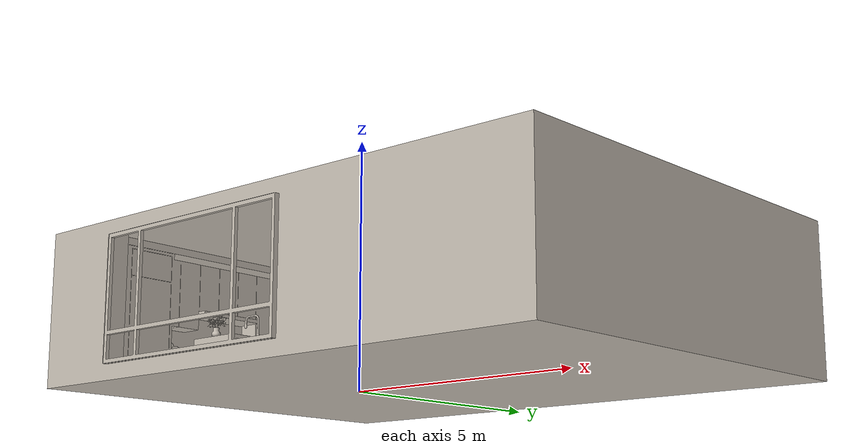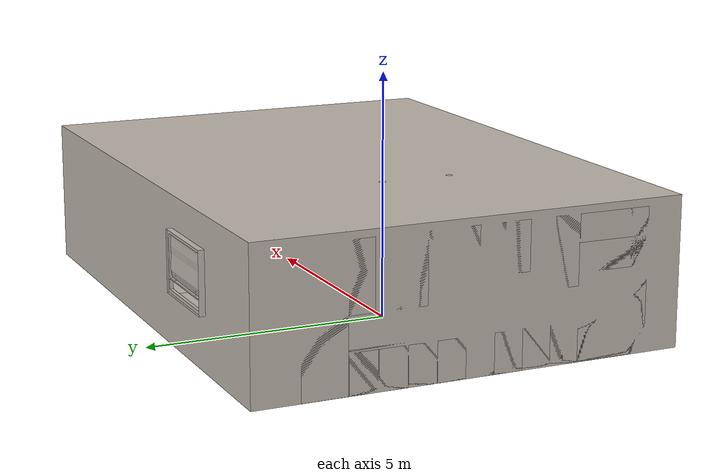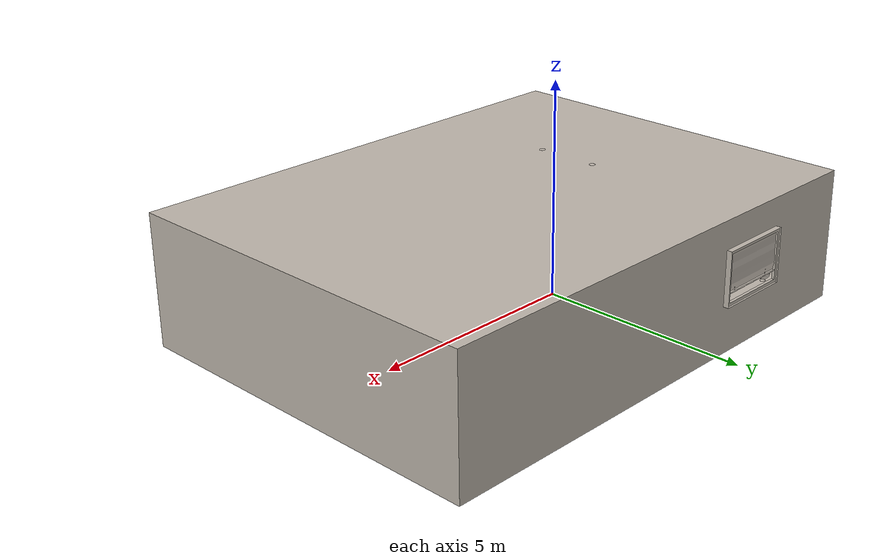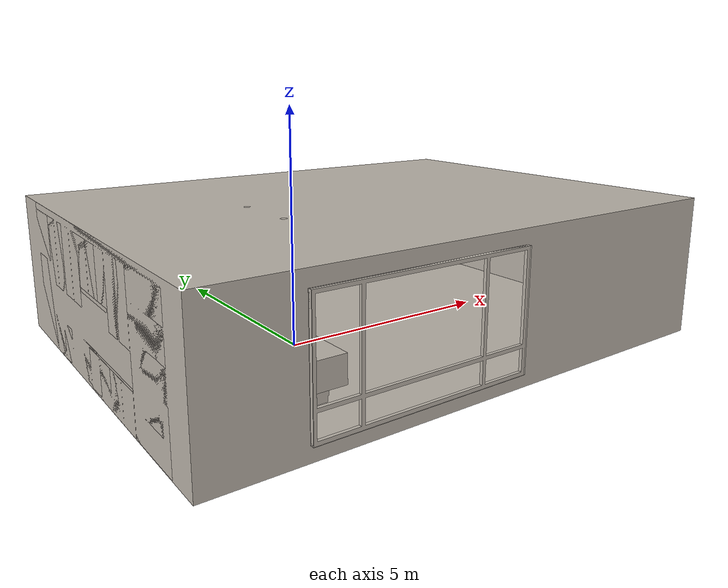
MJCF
<mujoco model="modern_scandinavian_kitchen_island">
  <compiler angle="radian" eulerseq="xyz"/>
  <default>
    <default class="visual">
      <geom group="2" type="mesh" contype="0" conaffinity="0"/>
    </default>
    <default class="collision">
      <geom group="3" type="mesh"/>
    </default>
  </default>
  <asset>
    <texture type="2d" name="material_0" file="material_0.png"/>
    <material name="material_0" texture="material_0" specular="0.4000000000000001" shininess="0.001"/>
    <texture type="2d" name="material_1" file="material_1.png"/>
    <material name="material_1" texture="material_1" specular="0.4000000000000001" shininess="0.001"/>
    <texture type="2d" name="material_2" file="material_2.png"/>
    <material name="material_2" texture="material_2" specular="0.4000000000000001" shininess="0.001"/>
    <texture type="2d" name="material_3" file="material_3.png"/>
    <material name="material_3" texture="material_3" specular="0.4000000000000001" shininess="0.001"/>
    <texture type="2d" name="material_4" file="material_4.png"/>
    <material name="material_4" texture="material_4" specular="0.4000000000000001" shininess="0.001"/>
    <texture type="2d" name="material_5" file="material_5.png"/>
    <material name="material_5" texture="material_5" specular="0.4000000000000001" shininess="0.001"/>
    <texture type="2d" name="material_6" file="material_6.png"/>
    <material name="material_6" texture="material_6" specular="0.4000000000000001" shininess="0.001"/>
    <texture type="2d" name="material_7" file="material_7.png"/>
    <material name="material_7" texture="material_7" specular="0.4000000000000001" shininess="0.001"/>
    <texture type="2d" name="material_8" file="material_8.png"/>
    <material name="material_8" texture="material_8" specular="0.4000000000000001" shininess="0.001"/>
    <texture type="2d" name="material_9" file="material_9.png"/>
    <material name="material_9" texture="material_9" specular="0.4000000000000001" shininess="0.001"/>
    <texture type="2d" name="material_10" file="material_10.png"/>
    <material name="material_10" texture="material_10" specular="0.4000000000000001" shininess="0.001"/>
    <texture type="2d" name="material_11" file="material_11.png"/>
    <material name="material_11" texture="material_11" specular="0.4000000000000001" shininess="0.001"/>
    <texture type="2d" name="material_12" file="material_12.png"/>
    <material name="material_12" texture="material_12" specular="0.4000000000000001" shininess="0.001"/>
    <texture type="2d" name="material_13" file="material_13.png"/>
    <material name="material_13" texture="material_13" specular="0.4000000000000001" shininess="0.001"/>
    <texture type="2d" name="material_14" file="material_14.png"/>
    <material name="material_14" texture="material_14" specular="0.4000000000000001" shininess="0.001"/>
    <texture type="2d" name="material_15" file="material_15.png"/>
    <material name="material_15" texture="material_15" specular="0.4000000000000001" shininess="0.001"/>
    <texture type="2d" name="material_16" file="material_16.png"/>
    <material name="material_16" texture="material_16" specular="0.4000000000000001" shininess="0.001"/>
    <texture type="2d" name="material_17" file="material_17.png"/>
    <material name="material_17" texture="material_17" specular="0.4000000000000001" shininess="0.001"/>
    <texture type="2d" name="material_18" file="material_18.png"/>
    <material name="material_18" texture="material_18" specular="0.4000000000000001" shininess="0.001"/>
    <texture type="2d" name="material_19" file="material_19.png"/>
    <material name="material_19" texture="material_19" specular="0.4000000000000001" shininess="0.001"/>
    <mesh file="modern_scandinavian_kitchen_island_0.obj"/>
    <mesh file="modern_scandinavian_kitchen_island_1.obj"/>
    <mesh file="modern_scandinavian_kitchen_island_2.obj"/>
    <mesh file="modern_scandinavian_kitchen_island_3.obj"/>
    <mesh file="modern_scandinavian_kitchen_island_4.obj"/>
    <mesh file="modern_scandinavian_kitchen_island_5.obj"/>
    <mesh file="modern_scandinavian_kitchen_island_6.obj"/>
    <mesh file="modern_scandinavian_kitchen_island_7.obj"/>
    <mesh file="modern_scandinavian_kitchen_island_8.obj"/>
    <mesh file="modern_scandinavian_kitchen_island_9.obj"/>
    <mesh file="modern_scandinavian_kitchen_island_10.obj"/>
    <mesh file="modern_scandinavian_kitchen_island_11.obj"/>
    <mesh file="modern_scandinavian_kitchen_island_12.obj"/>
    <mesh file="modern_scandinavian_kitchen_island_13.obj"/>
    <mesh file="modern_scandinavian_kitchen_island_14.obj"/>
    <mesh file="modern_scandinavian_kitchen_island_15.obj"/>
    <mesh file="modern_scandinavian_kitchen_island_16.obj"/>
    <mesh file="modern_scandinavian_kitchen_island_17.obj"/>
    <mesh file="modern_scandinavian_kitchen_island_18.obj"/>
    <mesh file="modern_scandinavian_kitchen_island_19.obj"/>
    <mesh file="modern_scandinavian_kitchen_island_collision_0.obj"/>
    <mesh file="modern_scandinavian_kitchen_island_collision_1.obj"/>
    <mesh file="modern_scandinavian_kitchen_island_collision_2.obj"/>
    <mesh file="modern_scandinavian_kitchen_island_collision_3.obj"/>
    <mesh file="modern_scandinavian_kitchen_island_collision_4.obj"/>
    <mesh file="modern_scandinavian_kitchen_island_collision_5.obj"/>
    <mesh file="modern_scandinavian_kitchen_island_collision_6.obj"/>
    <mesh file="modern_scandinavian_kitchen_island_collision_7.obj"/>
    <mesh file="modern_scandinavian_kitchen_island_collision_8.obj"/>
    <mesh file="modern_scandinavian_kitchen_island_collision_9.obj"/>
    <mesh file="modern_scandinavian_kitchen_island_collision_10.obj"/>
    <mesh file="modern_scandinavian_kitchen_island_collision_11.obj"/>
    <mesh file="modern_scandinavian_kitchen_island_collision_12.obj"/>
    <mesh file="modern_scandinavian_kitchen_island_collision_13.obj"/>
    <mesh file="modern_scandinavian_kitchen_island_collision_14.obj"/>
    <mesh file="modern_scandinavian_kitchen_island_collision_15.obj"/>
    <mesh file="modern_scandinavian_kitchen_island_collision_16.obj"/>
    <mesh file="modern_scandinavian_kitchen_island_collision_17.obj"/>
    <mesh file="modern_scandinavian_kitchen_island_collision_18.obj"/>
    <mesh file="modern_scandinavian_kitchen_island_collision_19.obj"/>
    <mesh file="modern_scandinavian_kitchen_island_collision_20.obj"/>
    <mesh file="modern_scandinavian_kitchen_island_collision_21.obj"/>
    <mesh file="modern_scandinavian_kitchen_island_collision_22.obj"/>
    <mesh file="modern_scandinavian_kitchen_island_collision_23.obj"/>
    <mesh file="modern_scandinavian_kitchen_island_collision_24.obj"/>
    <mesh file="modern_scandinavian_kitchen_island_collision_25.obj"/>
    <mesh file="modern_scandinavian_kitchen_island_collision_26.obj"/>
    <mesh file="modern_scandinavian_kitchen_island_collision_27.obj"/>
    <mesh file="modern_scandinavian_kitchen_island_collision_28.obj"/>
    <mesh file="modern_scandinavian_kitchen_island_collision_29.obj"/>
    <mesh file="modern_scandinavian_kitchen_island_collision_30.obj"/>
    <mesh file="modern_scandinavian_kitchen_island_collision_31.obj"/>
    <mesh file="modern_scandinavian_kitchen_island_collision_32.obj"/>
    <mesh file="modern_scandinavian_kitchen_island_collision_33.obj"/>
    <mesh file="modern_scandinavian_kitchen_island_collision_34.obj"/>
    <mesh file="modern_scandinavian_kitchen_island_collision_35.obj"/>
    <mesh file="modern_scandinavian_kitchen_island_collision_36.obj"/>
    <mesh file="modern_scandinavian_kitchen_island_collision_37.obj"/>
    <mesh file="modern_scandinavian_kitchen_island_collision_38.obj"/>
    <mesh file="modern_scandinavian_kitchen_island_collision_39.obj"/>
    <mesh file="modern_scandinavian_kitchen_island_collision_40.obj"/>
    <mesh file="modern_scandinavian_kitchen_island_collision_41.obj"/>
    <mesh file="modern_scandinavian_kitchen_island_collision_42.obj"/>
    <mesh file="modern_scandinavian_kitchen_island_collision_43.obj"/>
    <mesh file="modern_scandinavian_kitchen_island_collision_44.obj"/>
    <mesh file="modern_scandinavian_kitchen_island_collision_45.obj"/>
    <mesh file="modern_scandinavian_kitchen_island_collision_46.obj"/>
    <mesh file="modern_scandinavian_kitchen_island_collision_47.obj"/>
    <mesh file="modern_scandinavian_kitchen_island_collision_48.obj"/>
  </asset>
  <worldbody>
    <body name="modern_scandinavian_kitchen_island" euler="1.57 0 0">
      <geom mesh="modern_scandinavian_kitchen_island_0" material="material_19" class="visual"/>
      <geom mesh="modern_scandinavian_kitchen_island_1" material="material_18" class="visual"/>
      <geom mesh="modern_scandinavian_kitchen_island_2" material="material_17" class="visual"/>
      <geom mesh="modern_scandinavian_kitchen_island_3" material="material_16" class="visual"/>
      <geom mesh="modern_scandinavian_kitchen_island_4" material="material_15" class="visual"/>
      <geom mesh="modern_scandinavian_kitchen_island_5" material="material_14" class="visual"/>
      <geom mesh="modern_scandinavian_kitchen_island_6" material="material_13" class="visual"/>
      <geom mesh="modern_scandinavian_kitchen_island_7" material="material_12" class="visual"/>
      <geom mesh="modern_scandinavian_kitchen_island_8" material="material_11" class="visual"/>
      <geom mesh="modern_scandinavian_kitchen_island_9" material="material_10" class="visual"/>
      <geom mesh="modern_scandinavian_kitchen_island_10" material="material_9" class="visual"/>
      <geom mesh="modern_scandinavian_kitchen_island_11" material="material_8" class="visual"/>
      <geom mesh="modern_scandinavian_kitchen_island_12" material="material_7" class="visual"/>
      <geom mesh="modern_scandinavian_kitchen_island_13" material="material_6" class="visual"/>
      <geom mesh="modern_scandinavian_kitchen_island_14" material="material_5" class="visual"/>
      <geom mesh="modern_scandinavian_kitchen_island_15" material="material_4" class="visual"/>
      <geom mesh="modern_scandinavian_kitchen_island_16" material="material_3" class="visual"/>
      <geom mesh="modern_scandinavian_kitchen_island_17" material="material_2" class="visual"/>
      <geom mesh="modern_scandinavian_kitchen_island_18" material="material_1" class="visual"/>
      <geom mesh="modern_scandinavian_kitchen_island_19" material="material_0" class="visual"/>
      <geom mesh="modern_scandinavian_kitchen_island_collision_0" rgba="0.02049547743511604 0.9821416259018619 0.7870260099940235 1" class="collision"/>
      <geom mesh="modern_scandinavian_kitchen_island_collision_1" rgba="0.3739912202806074 0.28257311729319 0.9488038417607944 1" class="collision"/>
      <geom mesh="modern_scandinavian_kitchen_island_collision_2" rgba="0.8129871604492358 0.7527648124763313 0.9780496678595482 1" class="collision"/>
      <geom mesh="modern_scandinavian_kitchen_island_collision_3" rgba="0.27261057243227993 0.6485446332707373 0.9464054900561335 1" class="collision"/>
      <geom mesh="modern_scandinavian_kitchen_island_collision_4" rgba="0.09129206749429042 0.16561794131598495 0.7850740797340039 1" class="collision"/>
      <geom mesh="modern_scandinavian_kitchen_island_collision_5" rgba="0.6796309702291591 0.3259805983605344 0.9209337270858526 1" class="collision"/>
      <geom mesh="modern_scandinavian_kitchen_island_collision_6" rgba="0.7972625019789883 0.5435647456631177 0.06822350082358142 1" class="collision"/>
      <geom mesh="modern_scandinavian_kitchen_island_collision_7" rgba="0.26904574324093344 0.3522435238572774 0.7867455717541587 1" class="collision"/>
      <geom mesh="modern_scandinavian_kitchen_island_collision_8" rgba="0.9787163609141206 0.6018164005125565 0.8250012142158989 1" class="collision"/>
      <geom mesh="modern_scandinavian_kitchen_island_collision_9" rgba="0.800067763719658 0.9832861452391188 0.9857535422359364 1" class="collision"/>
      <geom mesh="modern_scandinavian_kitchen_island_collision_10" rgba="0.16302809855285483 0.25346788381684415 0.1238273029667829 1" class="collision"/>
      <geom mesh="modern_scandinavian_kitchen_island_collision_11" rgba="0.25841578914548957 0.6594963787528285 0.12583904578142446 1" class="collision"/>
      <geom mesh="modern_scandinavian_kitchen_island_collision_12" rgba="0.5084496104612874 0.8910443145072426 0.43984905046747247 1" class="collision"/>
      <geom mesh="modern_scandinavian_kitchen_island_collision_13" rgba="0.8510616152819919 0.9761238009668722 0.3710803290441177 1" class="collision"/>
      <geom mesh="modern_scandinavian_kitchen_island_collision_14" rgba="0.6879020347655169 0.8064935794957704 0.8581830539737266 1" class="collision"/>
      <geom mesh="modern_scandinavian_kitchen_island_collision_15" rgba="0.362380639123721 0.1727563609063203 0.5053932044322921 1" class="collision"/>
      <geom mesh="modern_scandinavian_kitchen_island_collision_16" rgba="0.5855367369375771 0.20601811766421252 0.2258747926913688 1" class="collision"/>
      <geom mesh="modern_scandinavian_kitchen_island_collision_17" rgba="0.16168164357173098 0.24769774044008208 0.3790659516960264 1" class="collision"/>
      <geom mesh="modern_scandinavian_kitchen_island_collision_18" rgba="0.08854406653178759 0.12094446620568955 0.3805805391186069 1" class="collision"/>
      <geom mesh="modern_scandinavian_kitchen_island_collision_19" rgba="0.4877867698359212 0.8924451335942355 0.3177123658438956 1" class="collision"/>
      <geom mesh="modern_scandinavian_kitchen_island_collision_20" rgba="0.5636796255502519 0.9640714740152967 0.7529076376792592 1" class="collision"/>
      <geom mesh="modern_scandinavian_kitchen_island_collision_21" rgba="0.9566367343494909 0.92366948162331 0.9146220565594506 1" class="collision"/>
      <geom mesh="modern_scandinavian_kitchen_island_collision_22" rgba="0.6278882890790024 0.7582954843409502 0.29867096484224076 1" class="collision"/>
      <geom mesh="modern_scandinavian_kitchen_island_collision_23" rgba="0.34791005907684236 0.5130443986444047 0.49203491625504947 1" class="collision"/>
      <geom mesh="modern_scandinavian_kitchen_island_collision_24" rgba="0.11536507036395482 0.04988416058734113 0.18049658525723933 1" class="collision"/>
      <geom mesh="modern_scandinavian_kitchen_island_collision_25" rgba="0.5006801371878292 0.6611197952467566 0.6166107119850249 1" class="collision"/>
      <geom mesh="modern_scandinavian_kitchen_island_collision_26" rgba="0.5627089275039013 0.7062675379791832 0.14369283699133284 1" class="collision"/>
      <geom mesh="modern_scandinavian_kitchen_island_collision_27" rgba="0.3503385306511537 0.140831606580607 0.7895760975852246 1" class="collision"/>
      <geom mesh="modern_scandinavian_kitchen_island_collision_28" rgba="0.665384024228772 0.30135060942478054 0.6736256655311122 1" class="collision"/>
      <geom mesh="modern_scandinavian_kitchen_island_collision_29" rgba="0.13990514830465417 0.2988791966117157 0.386957928386666 1" class="collision"/>
      <geom mesh="modern_scandinavian_kitchen_island_collision_30" rgba="0.5530703147607985 0.6968037696737657 0.49551188357757014 1" class="collision"/>
      <geom mesh="modern_scandinavian_kitchen_island_collision_31" rgba="0.00655516069332529 0.2967126195455134 0.13327618977904765 1" class="collision"/>
      <geom mesh="modern_scandinavian_kitchen_island_collision_32" rgba="0.4399565274789424 0.16855393066379454 0.19130156933859988 1" class="collision"/>
      <geom mesh="modern_scandinavian_kitchen_island_collision_33" rgba="0.46449160129162337 0.9773948558569842 0.48694700728793205 1" class="collision"/>
      <geom mesh="modern_scandinavian_kitchen_island_collision_34" rgba="0.2852324523726989 0.35136338990996785 0.36993859316340383 1" class="collision"/>
      <geom mesh="modern_scandinavian_kitchen_island_collision_35" rgba="0.70665439812101 0.44964153306384325 0.19449574814627169 1" class="collision"/>
      <geom mesh="modern_scandinavian_kitchen_island_collision_36" rgba="0.71350164245028 0.7723735830715186 0.9780831784624703 1" class="collision"/>
      <geom mesh="modern_scandinavian_kitchen_island_collision_37" rgba="0.6780626654270137 0.46371422735635326 0.10017240261387672 1" class="collision"/>
      <geom mesh="modern_scandinavian_kitchen_island_collision_38" rgba="0.5476609310098621 0.0396435928464014 0.2181190416235801 1" class="collision"/>
      <geom mesh="modern_scandinavian_kitchen_island_collision_39" rgba="0.8709698467661053 0.7645387361374745 0.7178694761734006 1" class="collision"/>
      <geom mesh="modern_scandinavian_kitchen_island_collision_40" rgba="0.04583513710451781 0.1539569191067438 0.8991672618531131 1" class="collision"/>
      <geom mesh="modern_scandinavian_kitchen_island_collision_41" rgba="0.4533923650060322 0.6524646669437866 0.9214581364410064 1" class="collision"/>
      <geom mesh="modern_scandinavian_kitchen_island_collision_42" rgba="0.004241760593624799 0.8579679405262374 0.9754458202518372 1" class="collision"/>
      <geom mesh="modern_scandinavian_kitchen_island_collision_43" rgba="0.09320693055137552 0.7717071215179998 0.789629074722892 1" class="collision"/>
      <geom mesh="modern_scandinavian_kitchen_island_collision_44" rgba="0.5280428543013567 0.6864912753695056 0.8855496714141626 1" class="collision"/>
      <geom mesh="modern_scandinavian_kitchen_island_collision_45" rgba="0.7690684971813174 0.3410116448942565 0.7340249010984846 1" class="collision"/>
      <geom mesh="modern_scandinavian_kitchen_island_collision_46" rgba="0.3518360721238908 0.27790348554490796 0.8579970919700627 1" class="collision"/>
      <geom mesh="modern_scandinavian_kitchen_island_collision_47" rgba="0.6377956924957253 0.06696439864746329 0.4391809472122912 1" class="collision"/>
      <geom mesh="modern_scandinavian_kitchen_island_collision_48" rgba="0.4047652084429365 0.5498098462978528 0.012676463487842238 1" class="collision"/>
    </body>
  </worldbody>
</mujoco>
